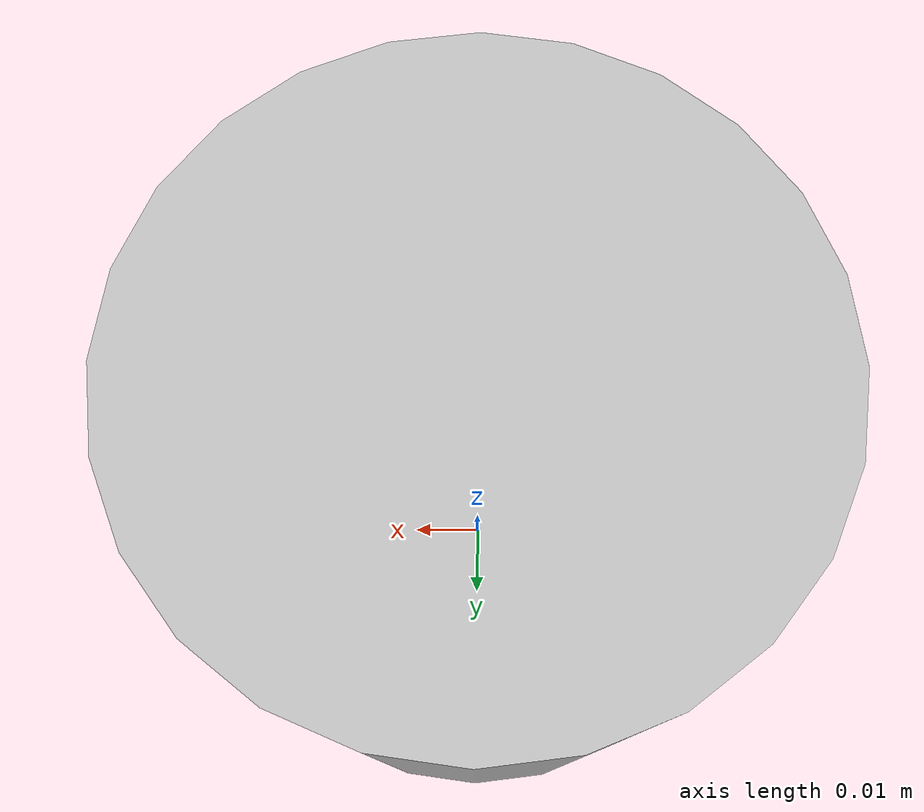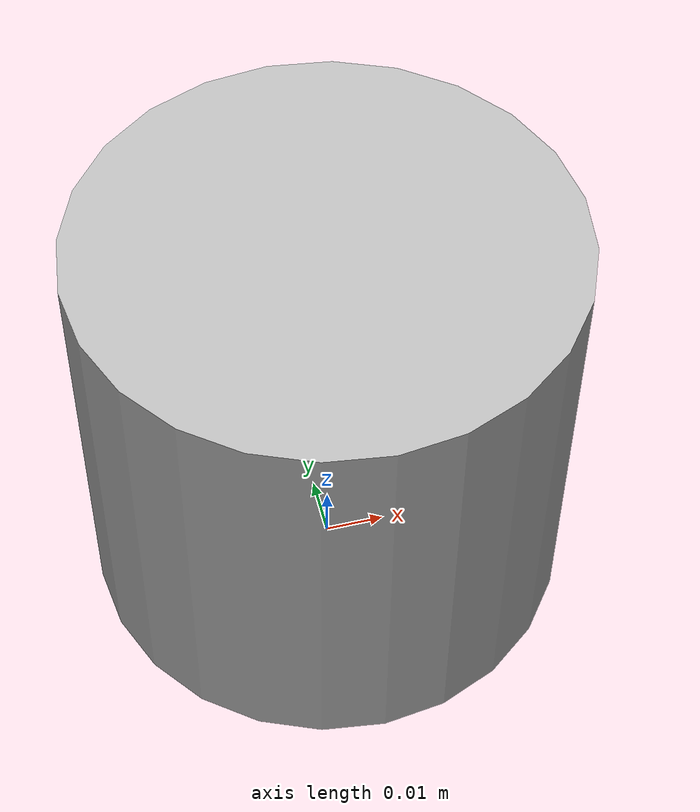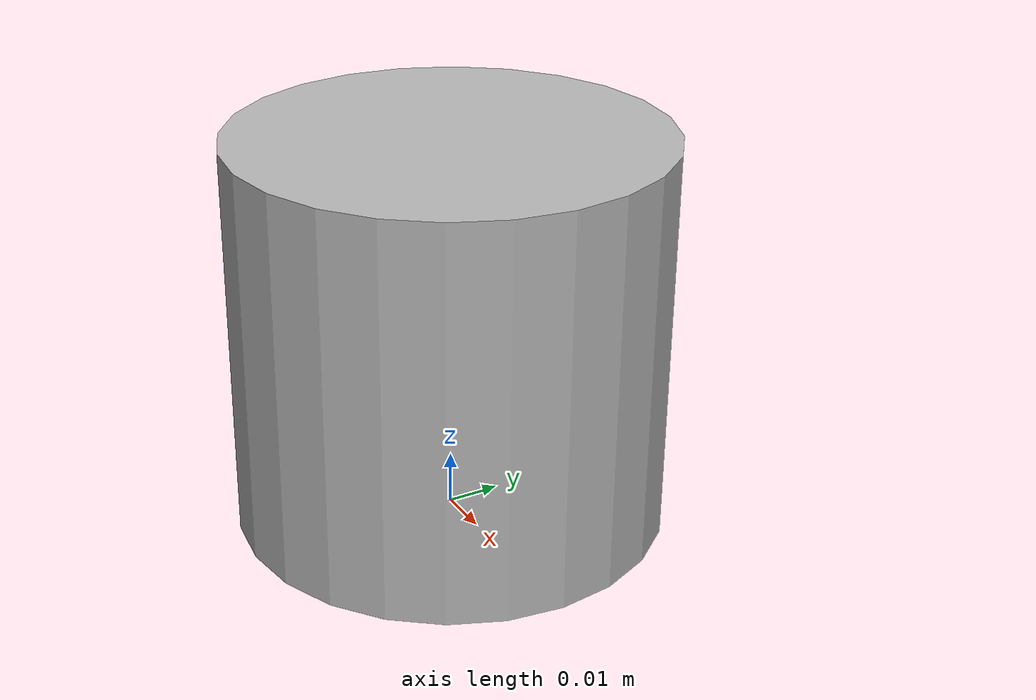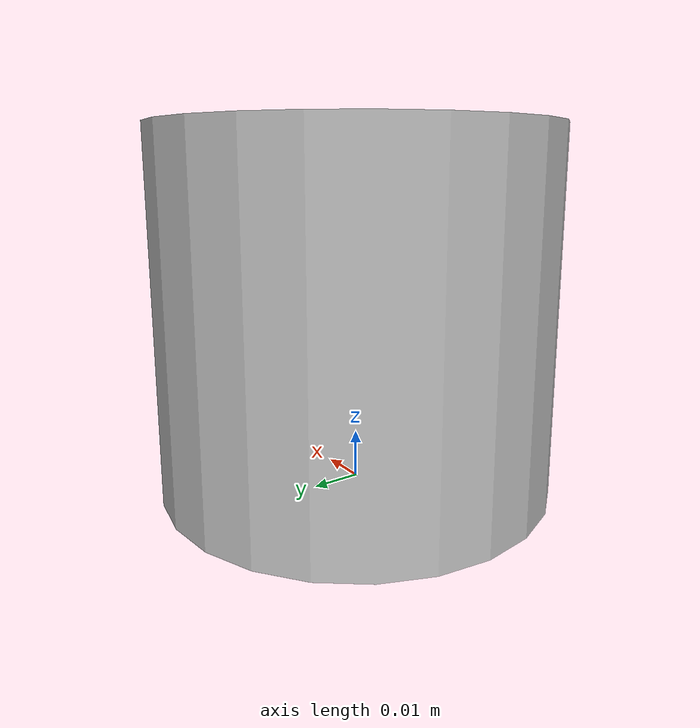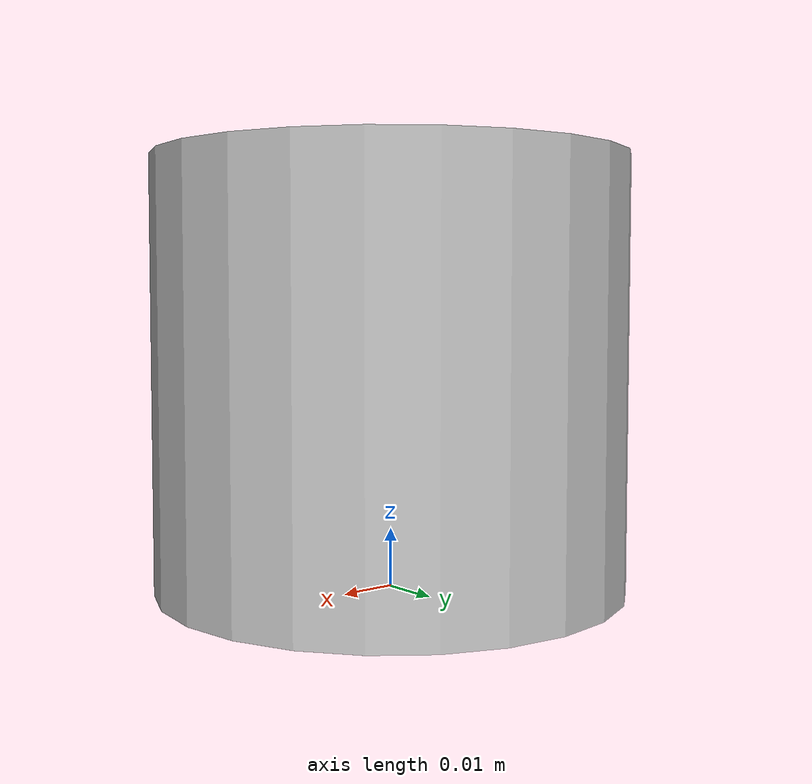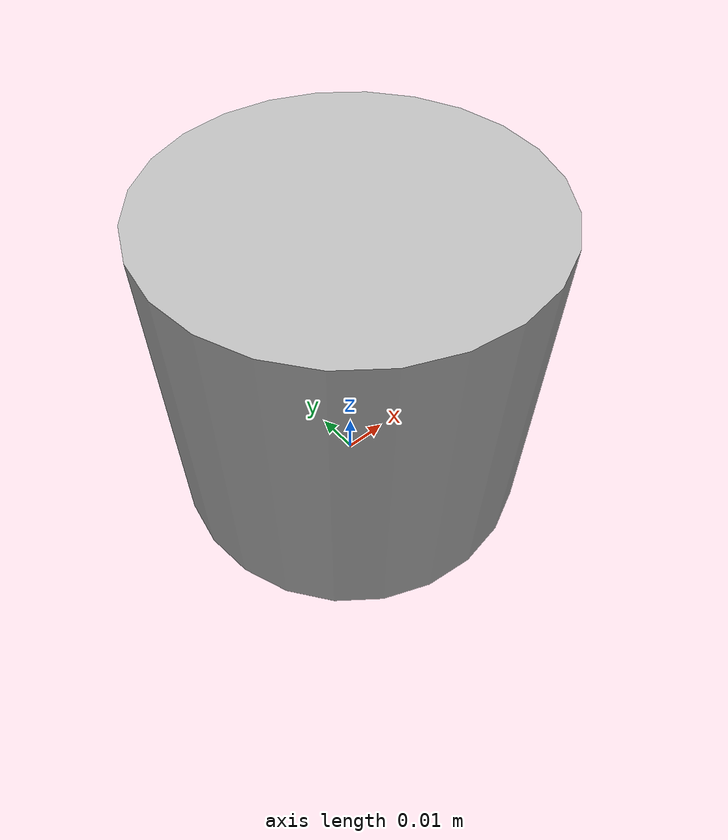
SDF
<?xml version='1.0'?>
<sdf version='1.4'>
    <model name="ouster_lidar">
        <link name='body'>
            <pose>0 0 0.0365 0 0 0</pose>
            <inertial>
                <inertia>
                    <ixx>0.000241148</ixx>
                    <ixy>0</ixy>
                    <ixz>0</ixz>
                    <iyy>0.000241148</iyy>
                    <iyz>0</iyz>
                    <izz>0.000264</izz>
                </inertia>
                <mass>0.33</mass>
            </inertial>
            <collision name='collision'>
                <geometry>
                    <cylinder>
                        <radius>0.04</radius>
                        <length>0.073</length>
                    </cylinder>
                </geometry>
            </collision>

            <visual name='visual'>
                <geometry>
                    <cylinder>
                        <radius>0.04</radius>
                        <length>0.073</length>
                    </cylinder>
                </geometry>
            </visual>
        </link>

        <link name="lidar_link">
            <sensor type="ray" name="OS1-64">
                <pose>0 0 0 0 0 0</pose>
                <visualize>true</visualize>
                <update_rate>10</update_rate>
                <ray>
                    <scan>
                        <horizontal>
                            <samples>5</samples>
                            <resolution>1</resolution>
                            <min_angle>0</min_angle>
                            <max_angle>0.157</max_angle>
                        </horizontal>
                        <vertical>
                            <samples>2</samples>
                            <resolution>1</resolution>
                            <min_angle>0.1</min_angle>
                            <max_angle>.26</max_angle>
                        </vertical>
                    </scan>
                    <range>
                        <min>0.9</min>
                        <max>3.0</max>
                        <resolution>0.03</resolution>
                    </range>
                </ray>
            </sensor>
        </link>
        <joint name="lidar_joint" type="fixed">
            <parent>body</parent>
            <child>lidar_link</child>
            <pose>0 0 0.03618 0 0 0</pose>
        </joint>
    </model>
</sdf>
